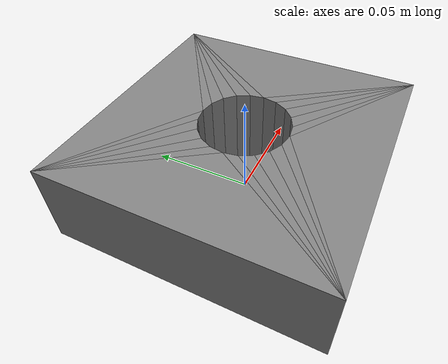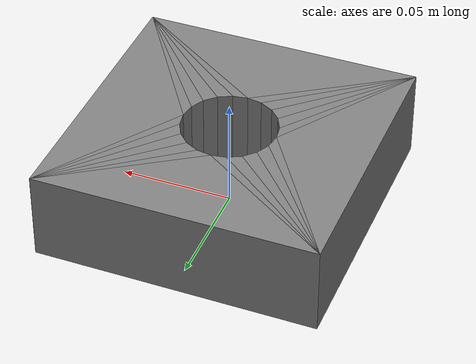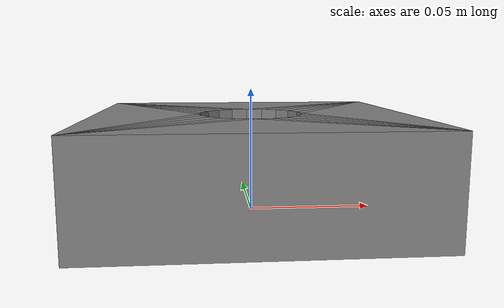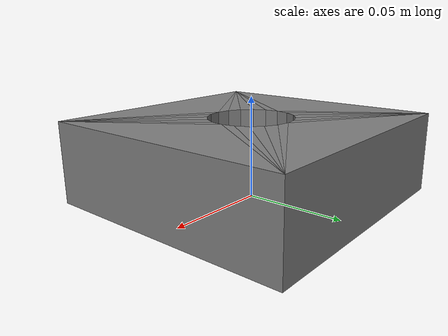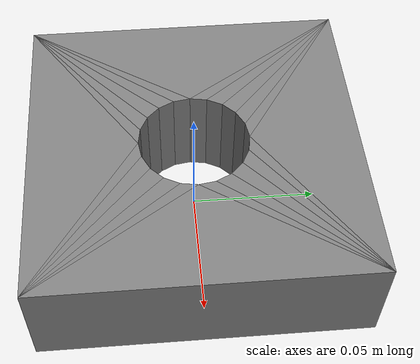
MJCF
<mujoco model="hole">
  <compiler angle="radian"/>
  <default>
    <default class="visual">
      <geom group="0" type="mesh" contype="0" conaffinity="0"/>
    </default>
    <default class="collision">
      <geom group="0" type="mesh" solimp="0.9 0.95 0.001 0.5 2" solref=".004 1" condim="6"/>
    </default>
  </default>
  <asset>
    <texture file="../textures/red-wood.png" type="cube" name="red-wood" />
    <material name="plate_mat" texture="red-wood" texrepeat="3 3" specular="0.4" shininess="0.1" />
    <mesh file="round-hole/round_hole_0.obj" name="round_hole_0"/>
    <mesh file="round-hole/round_hole_1.obj" name="round_hole_1"/>
    <mesh file="round-hole/round_hole_2.obj" name="round_hole_2"/>
    <mesh file="round-hole/round_hole_3.obj" name="round_hole_3"/>
    <mesh file="round-hole/round_hole_4.obj" name="round_hole_4"/>
    <mesh file="round-hole/round_hole_5.obj" name="round_hole_5"/>
    <mesh file="round-hole/round_hole_6.obj" name="round_hole_6"/>
    <mesh file="round-hole/round_hole_7.obj" name="round_hole_7"/>
    <mesh file="round-hole/round_hole_8.obj" name="round_hole_8"/>
    <mesh file="round-hole/round_hole_9.obj" name="round_hole_9"/>
    <mesh file="round-hole/round_hole_10.obj" name="round_hole_10"/>
    <mesh file="round-hole/round_hole_11.obj" name="round_hole_11"/>
    <mesh file="round-hole/round_hole_12.obj" name="round_hole_12"/>
    <mesh file="round-hole/round_hole_13.obj" name="round_hole_13"/>
    <mesh file="round-hole/round_hole_14.obj" name="round_hole_14"/>
    <mesh file="round-hole/round_hole_15.obj" name="round_hole_15"/>
    <mesh file="round-hole/round_hole_16.obj" name="round_hole_16"/>
    <mesh file="round-hole/round_hole_17.obj" name="round_hole_17"/>
    <mesh file="round-hole/round_hole_18.obj" name="round_hole_18"/>
    <mesh file="round-hole/round_hole_19.obj" name="round_hole_19"/>
    <mesh file="round-hole/round_hole_20.obj" name="round_hole_20"/>
    <mesh file="round-hole/round_hole_21.obj" name="round_hole_21"/>
    <mesh file="round-hole/round_hole_22.obj" name="round_hole_22"/>
    <mesh file="round-hole/round_hole_23.obj" name="round_hole_23"/>
  </asset>

  <!-- Always initialize the free camera to point at the origin. -->
  <worldbody>
    <body>
      <body name="object">
        <site rgba="0 0 0 0" size="0.005" pos="0 0 0.0" name="center"/>
        <site pos="0 0 0" size="0.005 .1" quat="0.707105  0 0.707108 0 " rgba="1 0 0 0" type="cylinder" group="1"/>
        <site pos="0 0 0" size="0.005 .1" quat="0.707105 0.707108 0 0" rgba="0 1 0 0" type="cylinder" group="1"/>
        <site pos="0 0 0" size="0.005 .1" quat="1 0 0 0" rgba="0 0 1 0" type="cylinder" group="1"/>
        <geom mesh="round_hole_0" class="collision"/>
        <geom mesh="round_hole_1" class="collision"/>
        <geom mesh="round_hole_2" class="collision"/>
        <geom mesh="round_hole_3" class="collision"/>
        <geom mesh="round_hole_4" class="collision"/>
        <geom mesh="round_hole_5" class="collision"/>
        <geom mesh="round_hole_6" class="collision"/>
        <geom mesh="round_hole_7" class="collision"/>
        <geom mesh="round_hole_8" class="collision"/>
        <geom mesh="round_hole_9" class="collision"/>
        <geom mesh="round_hole_10" class="collision"/>
        <geom mesh="round_hole_11" class="collision"/>
        <geom mesh="round_hole_12" class="collision"/>
        <geom mesh="round_hole_13" class="collision"/>
        <geom mesh="round_hole_14" class="collision"/>
        <geom mesh="round_hole_15" class="collision"/>
        <geom mesh="round_hole_16" class="collision"/>
        <geom mesh="round_hole_17" class="collision"/>
        <geom mesh="round_hole_18" class="collision"/>
        <geom mesh="round_hole_19" class="collision"/>
        <geom mesh="round_hole_20" class="collision"/>
        <geom mesh="round_hole_21" class="collision"/>
        <geom mesh="round_hole_22" class="collision"/>
        <geom mesh="round_hole_23" class="collision"/>
      </body>
    </body>
  </worldbody>
</mujoco>
